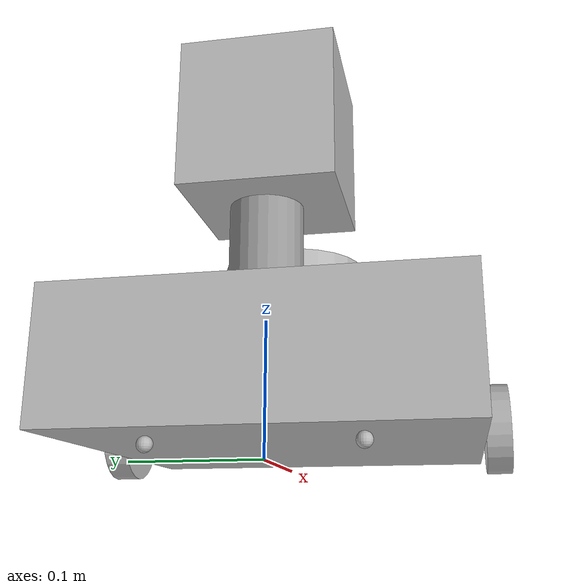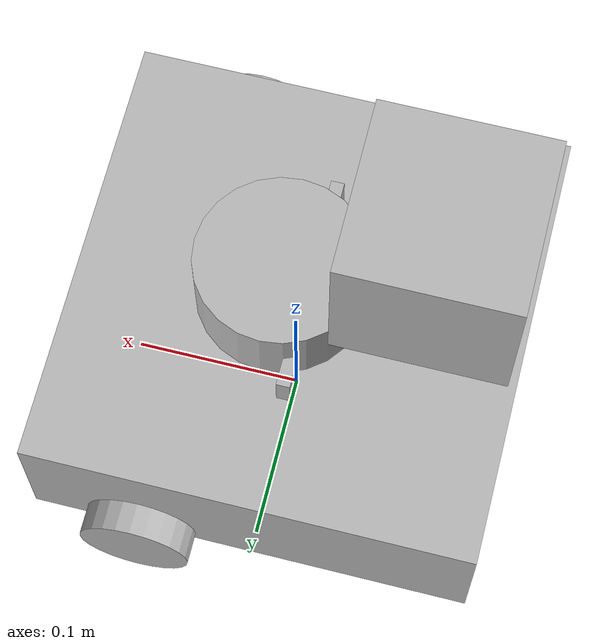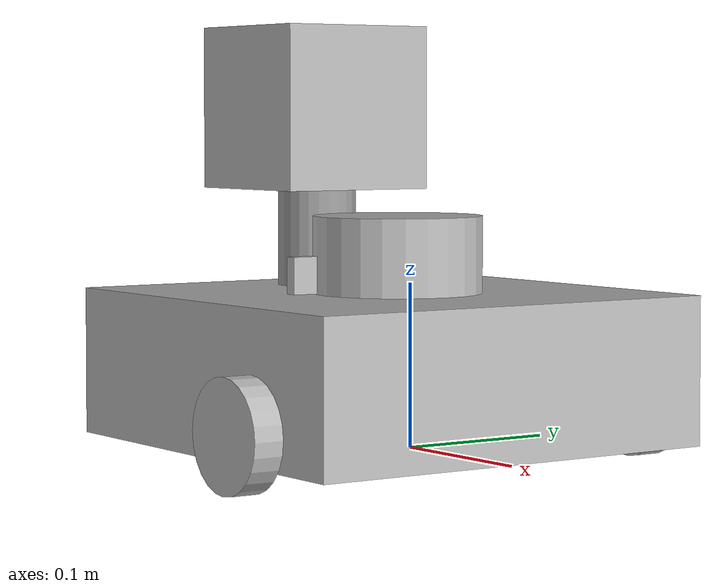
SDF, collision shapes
<?xml version='1.0'?>
<sdf version='1.7'>
  <model name='RBE460x_Bot'>
    <link name='link_0'>
      <inertial>
        <mass>0.000166256</mass>
        <inertia>
          <ixx>9.39683e-08</ixx>
          <ixy>0</ixy>
          <ixz>0</ixz>
          <iyy>9.39683e-08</iyy>
          <iyz>0</iyz>
          <izz>4.88123e-08</izz>
        </inertia>
        <pose>0 0 0 0 -0 0</pose>
      </inertial>
      <pose>-0.07653 -0.017353 0.121452 0 -0 0</pose>
      <visual name='visual'>
        <pose>0 0 0 0 -0 0</pose>
        <geometry>
          <cylinder>
            <radius>0.0242321</radius>
            <length>0.0708579</length>
          </cylinder>
        </geometry>
        <material>
          <lighting>1</lighting>
          <script>
            <uri>file://media/materials/scripts/gazebo.material</uri>
            <name>Gazebo/Grey</name>
          </script>
          <shader type='pixel'/>
          <emissive>0 0 0 1</emissive>
        </material>
        <transparency>0</transparency>
        <cast_shadows>1</cast_shadows>
      </visual>
      <collision name='collision'>
        <laser_retro>0</laser_retro>
        <max_contacts>10</max_contacts>
        <pose>0 0 0 0 -0 0</pose>
        <geometry>
          <cylinder>
            <radius>0.024232</radius>
            <length>0.070858</length>
          </cylinder>
        </geometry>
        <surface>
          <friction>
            <ode>
              <mu>1</mu>
              <mu2>1</mu2>
              <fdir1>0 0 0</fdir1>
              <slip1>0</slip1>
              <slip2>0</slip2>
            </ode>
            <torsional>
              <coefficient>1</coefficient>
              <patch_radius>0</patch_radius>
              <surface_radius>0</surface_radius>
              <use_patch_radius>1</use_patch_radius>
              <ode>
                <slip>0</slip>
              </ode>
            </torsional>
          </friction>
          <bounce>
            <restitution_coefficient>0</restitution_coefficient>
            <threshold>1e+06</threshold>
          </bounce>
          <contact>
            <collide_without_contact>0</collide_without_contact>
            <collide_without_contact_bitmask>1</collide_without_contact_bitmask>
            <collide_bitmask>1</collide_bitmask>
            <ode>
              <soft_cfm>0</soft_cfm>
              <soft_erp>0.2</soft_erp>
              <kp>1e+13</kp>
              <kd>1</kd>
              <max_vel>0.01</max_vel>
              <min_depth>0</min_depth>
            </ode>
            <bullet>
              <split_impulse>1</split_impulse>
              <split_impulse_penetration_threshold>-0.01</split_impulse_penetration_threshold>
              <soft_cfm>0</soft_cfm>
              <soft_erp>0.2</soft_erp>
              <kp>1e+13</kp>
              <kd>1</kd>
            </bullet>
          </contact>
        </surface>
      </collision>
    </link>
    <model name='camera'>
      <pose>-0.075501 -0.019749 0.205789 0 -0 0</pose>
      <link name='link'>
        <inertial>
          <mass>0.1</mass>
          <inertia>
            <ixx>0.000166667</ixx>
            <iyy>0.000166667</iyy>
            <izz>0.000166667</izz>
            <ixy>0</ixy>
            <ixz>0</ixz>
            <iyz>0</iyz>
          </inertia>
        </inertial>
        <collision name='collision'>
          <geometry>
            <box>
              <size>0.1 0.1 0.1</size>
            </box>
          </geometry>
        </collision>
        <visual name='visual'>
          <geometry>
            <box>
              <size>0.1 0.1 0.1</size>
            </box>
          </geometry>
        </visual>
        <sensor name='camera' type='camera'>
          <camera>
            <horizontal_fov>1.047</horizontal_fov>
            <image>
              <width>320</width>
              <height>240</height>
            </image>
            <clip>
              <near>0.1</near>
              <far>100</far>
            </clip>
          </camera>
          <always_on>1</always_on>
          <update_rate>30</update_rate>
          <visualize>1</visualize>
        </sensor>
      </link>
    </model>
    <model name='turtlebot3_waffle'>
      <link name='base'>
        <inertial>
          <pose>-0.064 0 0.048 0 -0 0</pose>
          <inertia>
            <ixx>0.001</ixx>
            <ixy>0</ixy>
            <ixz>0</ixz>
            <iyy>0.001</iyy>
            <iyz>0</iyz>
            <izz>0.001</izz>
          </inertia>
          <mass>1</mass>
        </inertial>
        <collision name='base_collision'>
          <pose>-0.064 0 0.048 0 -0 0</pose>
          <geometry>
            <box>
              <size>0.265 0.265 0.089</size>
            </box>
          </geometry>
        </collision>
        <visual name='base_visual'>
          <pose>-0.064 0 0 0 -0 0</pose>
          <geometry>
            <mesh>
              <uri>model://turtlebot3_common_meshes/waffle_base.dae</uri>
              <scale>0.001 0.001 0.001</scale>
            </mesh>
          </geometry>
        </visual>
        <collision name='right_caster_collision'>
          <pose>-0.177 -0.064 -0.004 0 -0 0</pose>
          <geometry>
            <sphere>
              <radius>0.005</radius>
            </sphere>
          </geometry>
          <surface>
            <friction>
              <ode>
                <mu>100000</mu>
                <mu2>100000</mu2>
                <fdir1>0 0 0</fdir1>
                <slip1>0</slip1>
                <slip2>0</slip2>
              </ode>
            </friction>
          </surface>
        </collision>
        <collision name='left_caster_collision'>
          <pose>-0.177 0.064 -0.004 0 -0 0</pose>
          <geometry>
            <sphere>
              <radius>0.005</radius>
            </sphere>
          </geometry>
          <surface>
            <friction>
              <ode>
                <mu>100000</mu>
                <mu2>100000</mu2>
                <fdir1>0 0 0</fdir1>
                <slip1>0</slip1>
                <slip2>0</slip2>
              </ode>
            </friction>
          </surface>
        </collision>
      </link>
      <link name='lidar'>
        <inertial>
          <pose>-0.052 0 0.111 0 -0 0</pose>
          <inertia>
            <ixx>0.001</ixx>
            <ixy>0</ixy>
            <ixz>0</ixz>
            <iyy>0.001</iyy>
            <iyz>0</iyz>
            <izz>0.001</izz>
          </inertia>
          <mass>0.125</mass>
        </inertial>
        <collision name='lidar_sensor_collision'>
          <pose>-0.052 0 0.111 0 -0 0</pose>
          <geometry>
            <cylinder>
              <radius>0.0508</radius>
              <length>0.055</length>
            </cylinder>
          </geometry>
        </collision>
        <visual name='lidar_sensor_visual'>
          <pose>-0.064 0 0.121 0 -0 0</pose>
          <geometry>
            <mesh>
              <uri>model://turtlebot3_common_meshes/lds.dae</uri>
              <scale>0.001 0.001 0.001</scale>
            </mesh>
          </geometry>
        </visual>
        <sensor name='hls_lfcd_lds' type='ray'>
          <always_on>1</always_on>
          <visualize>0</visualize>
          <pose>-0.064 0 0.121 0 -0 0</pose>
          <update_rate>1800</update_rate>
          <ray>
            <scan>
              <horizontal>
                <samples>360</samples>
                <resolution>1</resolution>
                <min_angle>0</min_angle>
                <max_angle>6.28</max_angle>
              </horizontal>
            </scan>
            <range>
              <min>0.12</min>
              <max>3.5</max>
              <resolution>0.015</resolution>
            </range>
            <noise>
              <type>gaussian</type>
              <mean>0</mean>
              <stddev>0.01</stddev>
            </noise>
          </ray>
        </sensor>
      </link>
      <link name='image'>
        <inertial>
          <pose>-0.069 0 0.104 0 -0 0</pose>
          <inertia>
            <ixx>0.001</ixx>
            <ixy>0</ixy>
            <ixz>0</ixz>
            <iyy>0.001</iyy>
            <iyz>0</iyz>
            <izz>0.001</izz>
          </inertia>
          <mass>0.035</mass>
        </inertial>
        <collision name='image_collision'>
          <pose>-0.069 0 0.104 0 -0 0</pose>
          <geometry>
            <box>
              <size>0.008 0.13 0.022</size>
            </box>
          </geometry>
        </collision>
        <sensor name='intel_realsense_r200' type='camera'>
          <always_on>1</always_on>
          <visualize>0</visualize>
          <update_rate>30</update_rate>
          <pose>0.064 -0.047 0.107 0 -0 0</pose>
          <camera>
            <horizontal_fov>1.02974</horizontal_fov>
            <image>
              <width>1920</width>
              <height>1080</height>
              <format>R8G8B8</format>
            </image>
            <clip>
              <near>0.02</near>
              <far>300</far>
            </clip>
          </camera>
        </sensor>
      </link>
      <link name='left_wheel'>
        <inertial>
          <pose>0 0.144 0.023 -1.57 0 0</pose>
          <inertia>
            <ixx>0.001</ixx>
            <ixy>0</ixy>
            <ixz>0</ixz>
            <iyy>0.001</iyy>
            <iyz>0</iyz>
            <izz>0.001</izz>
          </inertia>
          <mass>0.1</mass>
        </inertial>
        <collision name='left_wheel_collision'>
          <pose>0 0.144 0.023 -1.57 0 0</pose>
          <geometry>
            <cylinder>
              <radius>0.033</radius>
              <length>0.018</length>
            </cylinder>
          </geometry>
          <surface>
            <friction>
              <ode>
                <mu>100000</mu>
                <mu2>100000</mu2>
                <fdir1>0 0 0</fdir1>
                <slip1>0</slip1>
                <slip2>0</slip2>
              </ode>
            </friction>
          </surface>
        </collision>
        <visual name='left_wheel_visual'>
          <pose>0 0.144 0.023 0 -0 0</pose>
          <geometry>
            <mesh>
              <uri>model://turtlebot3_common_meshes/tire.dae</uri>
              <scale>0.001 0.001 0.001</scale>
            </mesh>
          </geometry>
        </visual>
      </link>
      <link name='right_wheel'>
        <inertial>
          <pose>0 -0.144 0.023 -1.57 0 0</pose>
          <inertia>
            <ixx>0.001</ixx>
            <ixy>0</ixy>
            <ixz>0</ixz>
            <iyy>0.001</iyy>
            <iyz>0</iyz>
            <izz>0.001</izz>
          </inertia>
          <mass>0.1</mass>
        </inertial>
        <collision name='right_wheel_collision'>
          <pose>0 -0.144 0.023 -1.57 0 0</pose>
          <geometry>
            <cylinder>
              <radius>0.033</radius>
              <length>0.018</length>
            </cylinder>
          </geometry>
          <surface>
            <friction>
              <ode>
                <mu>100000</mu>
                <mu2>100000</mu2>
                <fdir1>0 0 0</fdir1>
                <slip1>0</slip1>
                <slip2>0</slip2>
              </ode>
            </friction>
          </surface>
        </collision>
        <visual name='right_wheel_visual'>
          <pose>0 -0.144 0.023 0 -0 0</pose>
          <geometry>
            <mesh>
              <uri>model://turtlebot3_common_meshes/tire.dae</uri>
              <scale>0.001 0.001 0.001</scale>
            </mesh>
          </geometry>
        </visual>
      </link>
      <joint name='left_wheel_joint' type='revolute'>
        <parent>base</parent>
        <child>left_wheel</child>
        <pose>0 0.144 0.023 -1.57 0 0</pose>
        <axis>
          <xyz>0 1 0</xyz>
          <limit>
            <lower>-1e+16</lower>
            <upper>1e+16</upper>
          </limit>
        </axis>
      </joint>
      <joint name='right_wheel_joint' type='revolute'>
        <parent>base</parent>
        <child>right_wheel</child>
        <pose>0 -0.144 0.023 -1.57 0 0</pose>
        <axis>
          <xyz>0 1 0</xyz>
          <limit>
            <lower>-1e+16</lower>
            <upper>1e+16</upper>
          </limit>
        </axis>
      </joint>
      <joint name='lidar_joint' type='fixed'>
        <parent>base</parent>
        <child>lidar</child>
        <pose>-0.064 0 0.121 0 -0 0</pose>
        <axis>
          <xyz expressed_in='__model__'>0 0 1</xyz>
          <limit>
            <lower>-1e+16</lower>
            <upper>1e+16</upper>
          </limit>
        </axis>
      </joint>
      <joint name='image_joint' type='fixed'>
        <parent>base</parent>
        <child>image</child>
        <pose>0.064 -0.065 0.094 0 -0 0</pose>
        <axis>
          <xyz expressed_in='__model__'>0 0 1</xyz>
          <limit>
            <lower>-1e+16</lower>
            <upper>1e+16</upper>
          </limit>
        </axis>
      </joint>
      <pose>0.065025 -0.018509 0.003065 0 -0 0</pose>
    </model>
    <joint name='link_JOINT_0' type='fixed'>
      <parent>camera::link</parent>
      <child>link_0</child>
      <pose>0 0 0 0 -0 0</pose>
      <physics>
        <ode>
          <limit>
            <cfm>0</cfm>
            <erp>0.2</erp>
          </limit>
          <suspension>
            <cfm>0</cfm>
            <erp>0.2</erp>
          </suspension>
        </ode>
      </physics>
    </joint>
    <joint name='link_0_JOINT_1' type='revolute'>
      <parent>link_0</parent>
      <child>turtlebot3_waffle::base</child>
      <pose>0 0 0 0 -0 0</pose>
      <axis>
        <xyz>1 0 0</xyz>
        <limit>
          <lower>-1.79769e+308</lower>
          <upper>1.79769e+308</upper>
          <effort>-1</effort>
          <velocity>-1</velocity>
        </limit>
        <dynamics>
          <spring_reference>0</spring_reference>
          <spring_stiffness>0</spring_stiffness>
          <damping>0</damping>
        </dynamics>
      </axis>
      <physics>
        <ode>
          <limit>
            <cfm>0</cfm>
            <erp>0.2</erp>
          </limit>
          <suspension>
            <cfm>0</cfm>
            <erp>0.2</erp>
          </suspension>
        </ode>
      </physics>
    </joint>
    <static>0</static>
    <allow_auto_disable>1</allow_auto_disable>
  </model>
</sdf>
